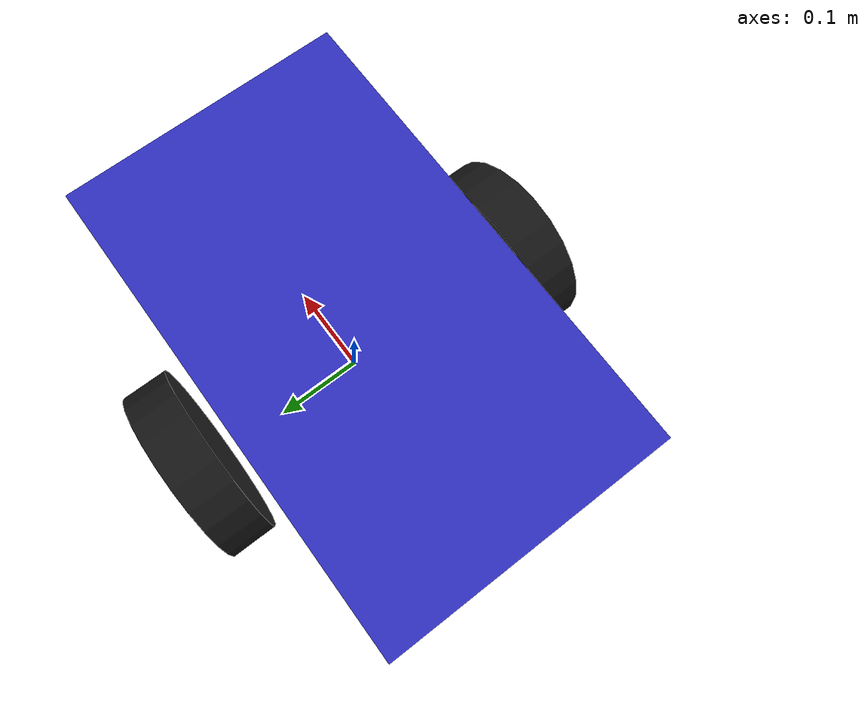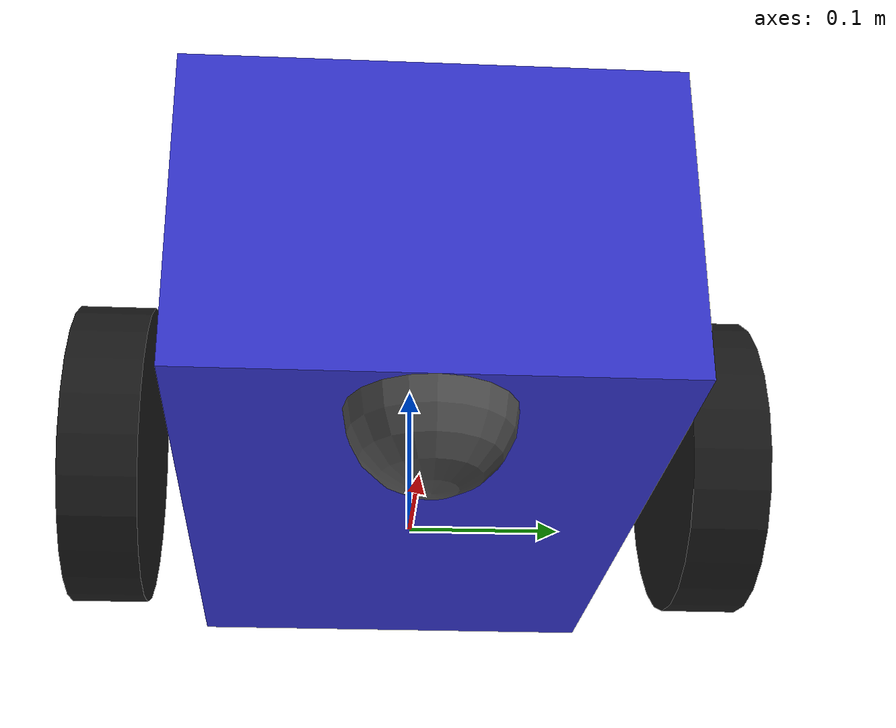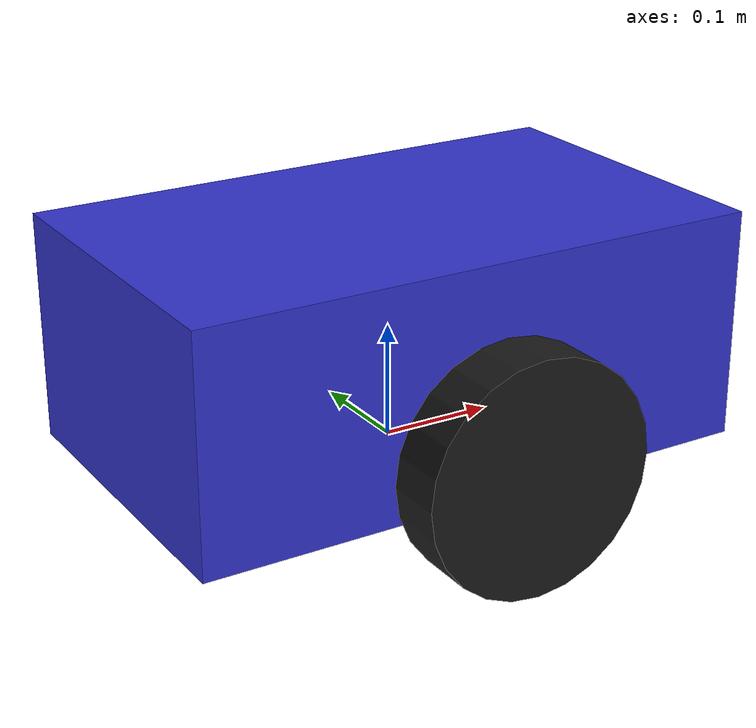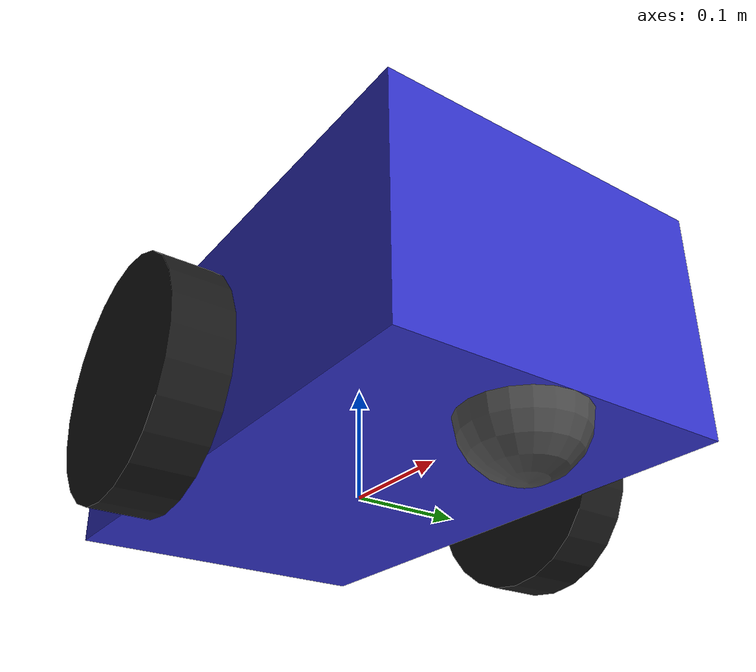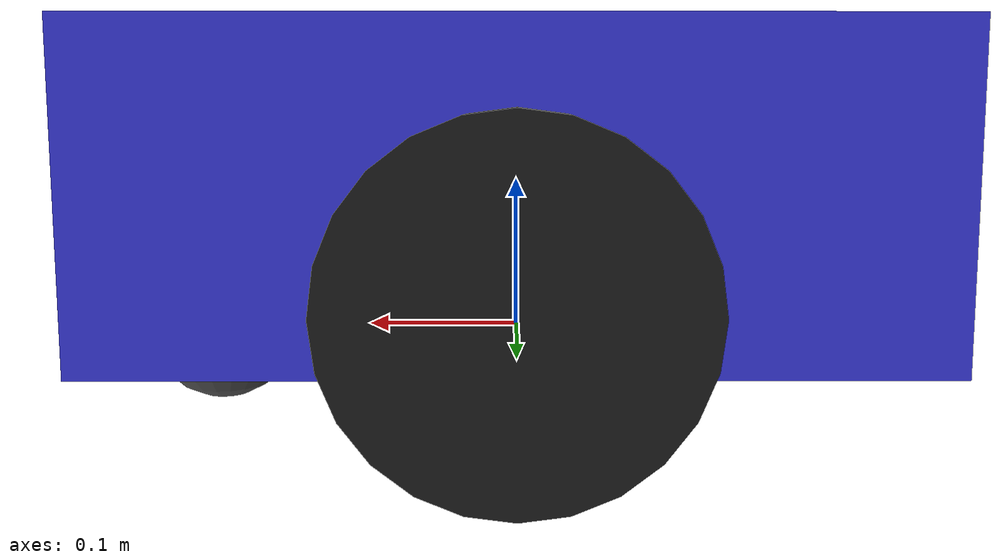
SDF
<?xml version="1.0"?>
<sdf version="1.8">
  <model name="simple_robot">
    <pose>0 0 0.1 0 0 0</pose>

    <!-- Base link (body) -->
    <link name="base_link">
      <inertial>
        <mass>5.0</mass>
        <inertia>
          <ixx>0.083</ixx>
          <ixy>0</ixy>
          <ixz>0</ixz>
          <iyy>0.083</iyy>
          <iyz>0</iyz>
          <izz>0.083</izz>
        </inertia>
      </inertial>

      <!-- Visual -->
      <visual name="base_visual">
        <geometry>
          <box>
            <size>0.5 0.3 0.2</size>
          </box>
        </geometry>
        <material>
          <ambient>0.2 0.2 0.8 1</ambient>
          <diffuse>0.2 0.2 0.8 1</diffuse>
          <specular>0.1 0.1 0.3 1</specular>
        </material>
      </visual>

      <!-- Collision -->
      <collision name="base_collision">
        <geometry>
          <box>
            <size>0.5 0.3 0.2</size>
          </box>
        </geometry>
      </collision>
    </link>

    <!-- Left wheel -->
    <link name="left_wheel">
      <pose relative_to="base_link">0 0.2 -0.05 -1.5707 0 0</pose>
      <inertial>
        <mass>0.5</mass>
        <inertia>
          <ixx>0.001</ixx>
          <ixy>0</ixy>
          <ixz>0</ixz>
          <iyy>0.001</iyy>
          <iyz>0</iyz>
          <izz>0.001</izz>
        </inertia>
      </inertial>

      <visual name="visual">
        <geometry>
          <cylinder>
            <radius>0.1</radius>
            <length>0.05</length>
          </cylinder>
        </geometry>
        <material>
          <ambient>0.1 0.1 0.1 1</ambient>
          <diffuse>0.1 0.1 0.1 1</diffuse>
        </material>
      </visual>

      <collision name="collision">
        <geometry>
          <cylinder>
            <radius>0.1</radius>
            <length>0.05</length>
          </cylinder>
        </geometry>
        <surface>
          <friction>
            <ode>
              <mu>1.0</mu>
              <mu2>1.0</mu2>
            </ode>
          </friction>
        </surface>
      </collision>
    </link>

    <!-- Right wheel -->
    <link name="right_wheel">
      <pose relative_to="base_link">0 -0.2 -0.05 -1.5707 0 0</pose>
      <inertial>
        <mass>0.5</mass>
        <inertia>
          <ixx>0.001</ixx>
          <ixy>0</ixy>
          <ixz>0</ixz>
          <iyy>0.001</iyy>
          <iyz>0</iyz>
          <izz>0.001</izz>
        </inertia>
      </inertial>

      <visual name="visual">
        <geometry>
          <cylinder>
            <radius>0.1</radius>
            <length>0.05</length>
          </cylinder>
        </geometry>
        <material>
          <ambient>0.1 0.1 0.1 1</ambient>
          <diffuse>0.1 0.1 0.1 1</diffuse>
        </material>
      </visual>

      <collision name="collision">
        <geometry>
          <cylinder>
            <radius>0.1</radius>
            <length>0.05</length>
          </cylinder>
        </geometry>
        <surface>
          <friction>
            <ode>
              <mu>1.0</mu>
              <mu2>1.0</mu2>
            </ode>
          </friction>
        </surface>
      </collision>
    </link>

    <!-- Caster wheel (front) -->
    <link name="caster">
      <pose relative_to="base_link">0.2 0 -0.1 0 0 0</pose>
      <inertial>
        <mass>0.1</mass>
        <inertia>
          <ixx>0.0001</ixx>
          <ixy>0</ixy>
          <ixz>0</ixz>
          <iyy>0.0001</iyy>
          <iyz>0</iyz>
          <izz>0.0001</izz>
        </inertia>
      </inertial>

      <visual name="visual">
        <geometry>
          <sphere>
            <radius>0.05</radius>
          </sphere>
        </geometry>
        <material>
          <ambient>0.3 0.3 0.3 1</ambient>
          <diffuse>0.3 0.3 0.3 1</diffuse>
        </material>
      </visual>

      <collision name="collision">
        <geometry>
          <sphere>
            <radius>0.05</radius>
          </sphere>
        </geometry>
        <surface>
          <friction>
            <ode>
              <mu>0.1</mu>
              <mu2>0.1</mu2>
            </ode>
          </friction>
        </surface>
      </collision>
    </link>

    <!-- Joint: base to left wheel -->
    <joint name="left_wheel_joint" type="revolute">
      <parent>base_link</parent>
      <child>left_wheel</child>
      <axis>
        <xyz>0 0 1</xyz>
      </axis>
    </joint>

    <!-- Joint: base to right wheel -->
    <joint name="right_wheel_joint" type="revolute">
      <parent>base_link</parent>
      <child>right_wheel</child>
      <axis>
        <xyz>0 0 1</xyz>
      </axis>
    </joint>

    <!-- Joint: base to caster -->
    <joint name="caster_joint" type="ball">
      <parent>base_link</parent>
      <child>caster</child>
    </joint>

  </model>
</sdf>
